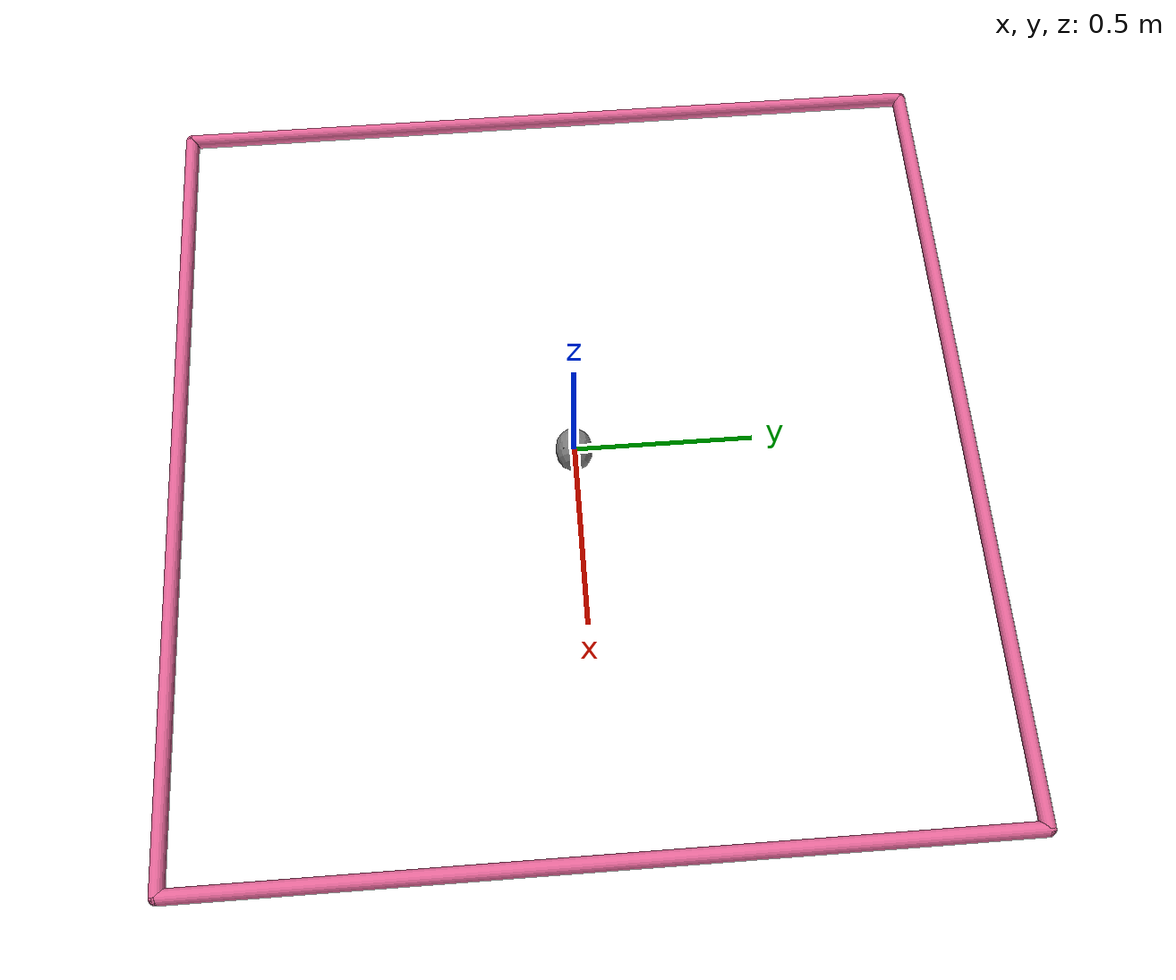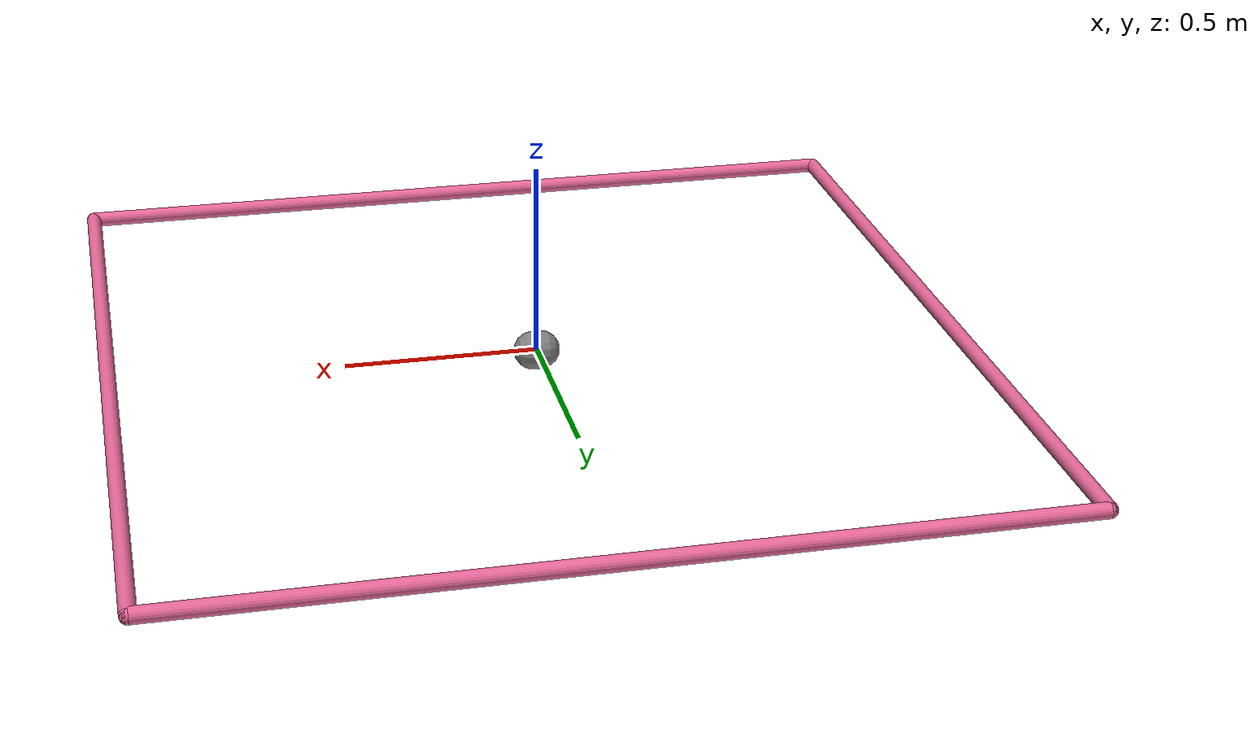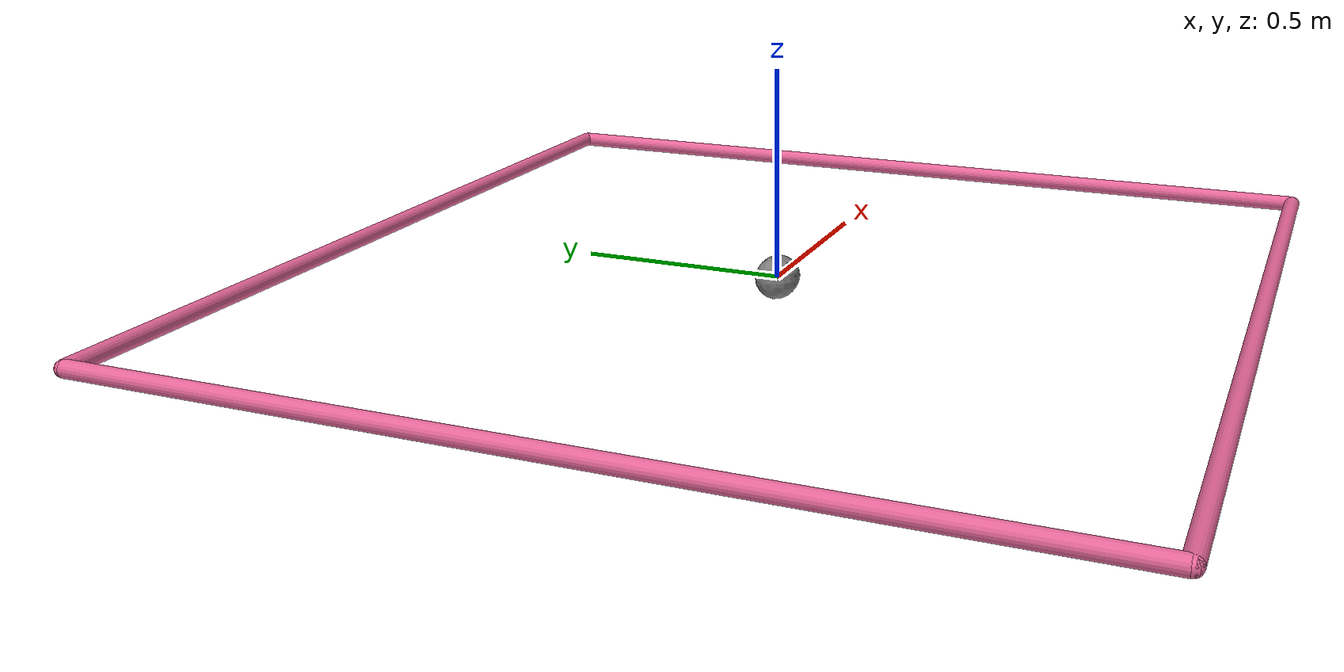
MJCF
<mujoco model="linearparticle">

    <compiler inertiafromgeom="true" angle="radian" coordinate="local" />
    <option timestep="0.01" gravity="0 0 0" iterations="20" integrator="Euler" />
    <default>
        <joint limited="false" damping="1" />
        <geom contype="2" conaffinity="1" condim="1" friction=".5 .1 .1" density="1000" margin="0.002" />
    </default>

    <worldbody>
        <body name="particle" pos="0 0 0">
            <geom name="particle_geom" type="capsule" fromto="-0.01 0 0 0.01 0 0" size="0.05" />
            <site name="particle_site" pos="0 0 0" size="0.01" />
            <joint name="ball_x" type="slide" limited="true" range="-1 1" pos="0 0 0" axis="1 0 0" />
            <joint name="ball_y" type="slide" limited="true" range="-1 1" pos="0 0 0" axis="0 1 0" />
        </body>
       <!-- Arena -->
		<geom conaffinity="0" fromto="-1.1 -1.1 .01 1.1 -1.1 .01" name="sideS" rgba="0.9 0.4 0.6 1" size=".02" type="capsule"/>
		<geom conaffinity="0" fromto=" 1.1 -1.1 .01 1.1  1.1 .01" name="sideE" rgba="0.9 0.4 0.6 1" size=".02" type="capsule"/>
		<geom conaffinity="0" fromto="-1.1  1.1 .01 1.1  1.1 .01" name="sideN" rgba="0.9 0.4 0.6 1" size=".02" type="capsule"/>
		<geom conaffinity="0" fromto="-1.1 -1.1 .01 -1.1 1.1 .01" name="sideW" rgba="0.9 0.4 0.6 1" size=".02" type="capsule"/>
    </worldbody>

    <actuator>
        <motor joint="ball_x" ctrlrange="-1 1" ctrllimited="true"/>
        <motor joint="ball_y" ctrlrange="-1 1" ctrllimited="true"/>
    </actuator>
</mujoco>
